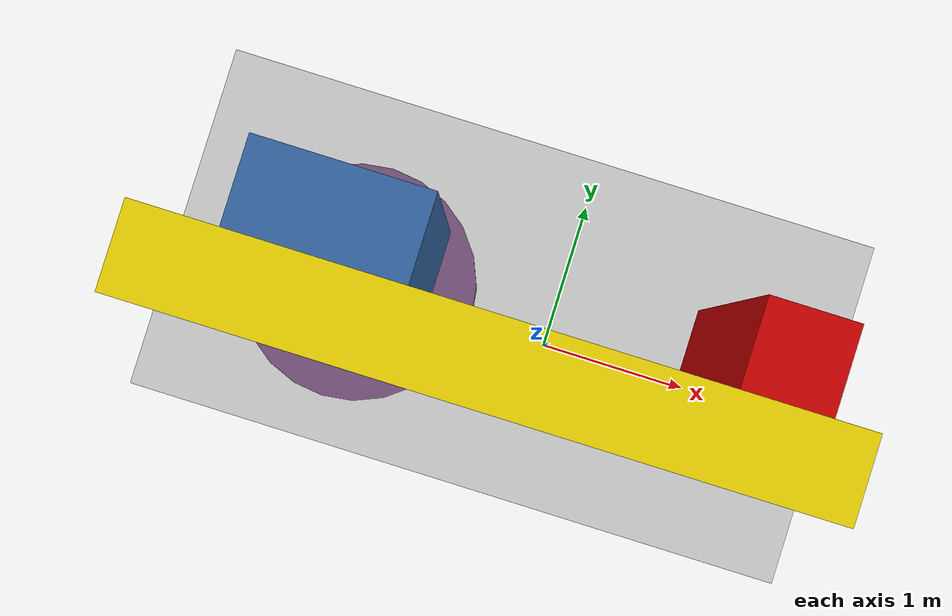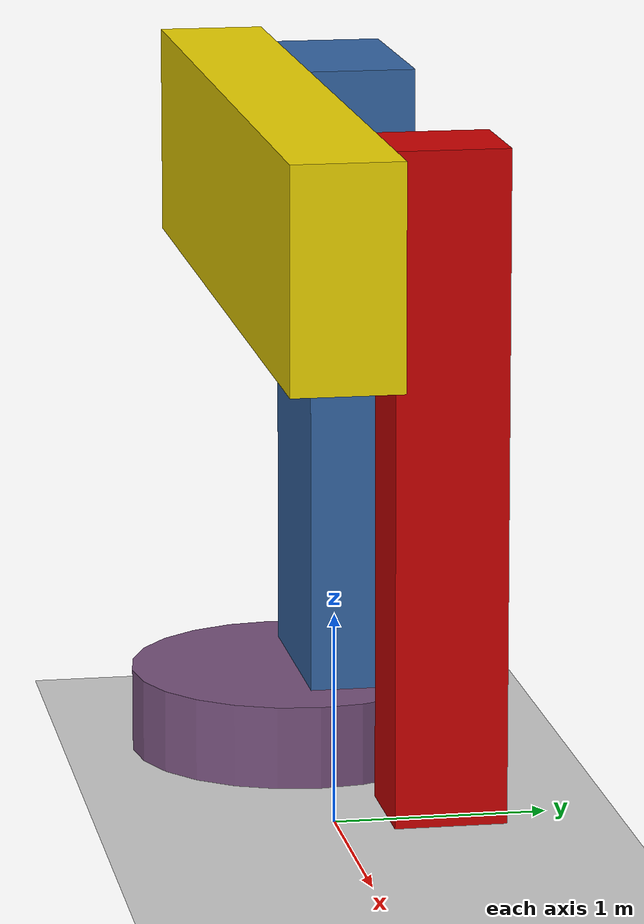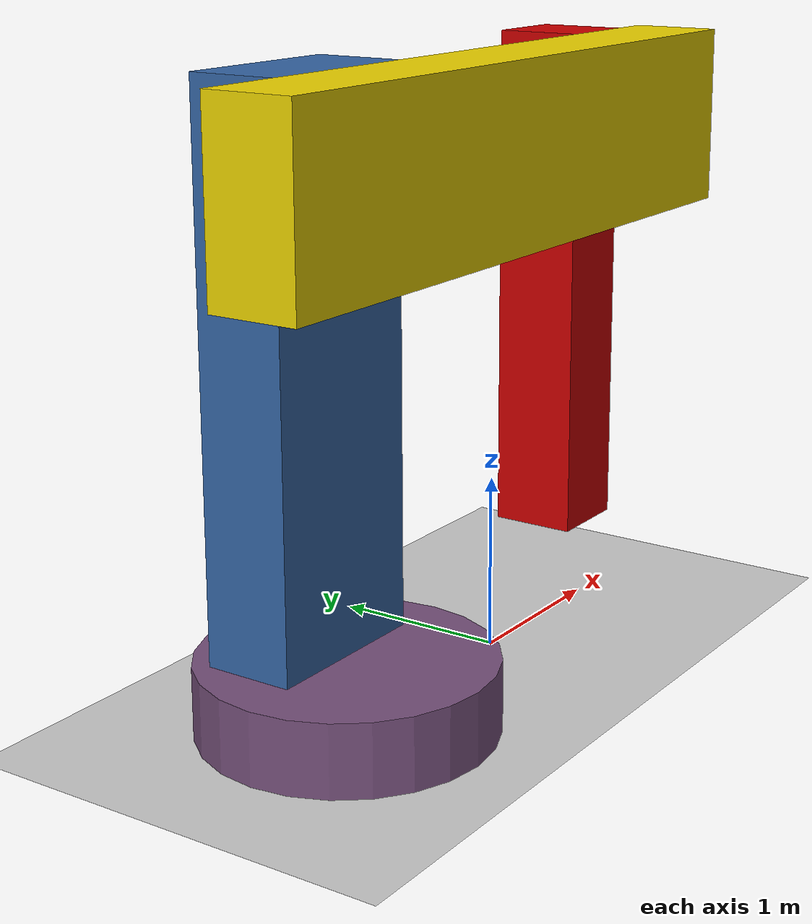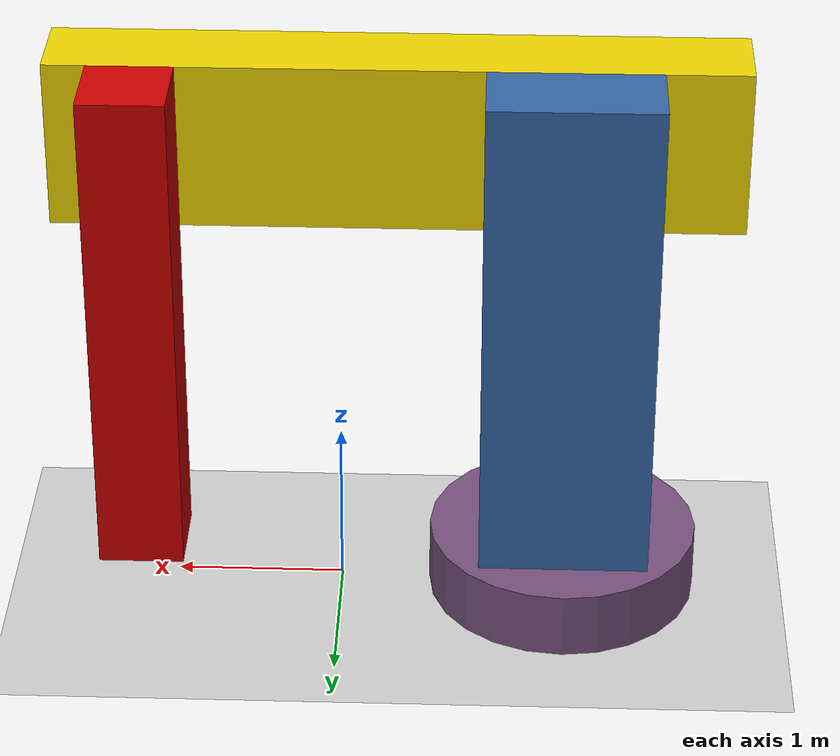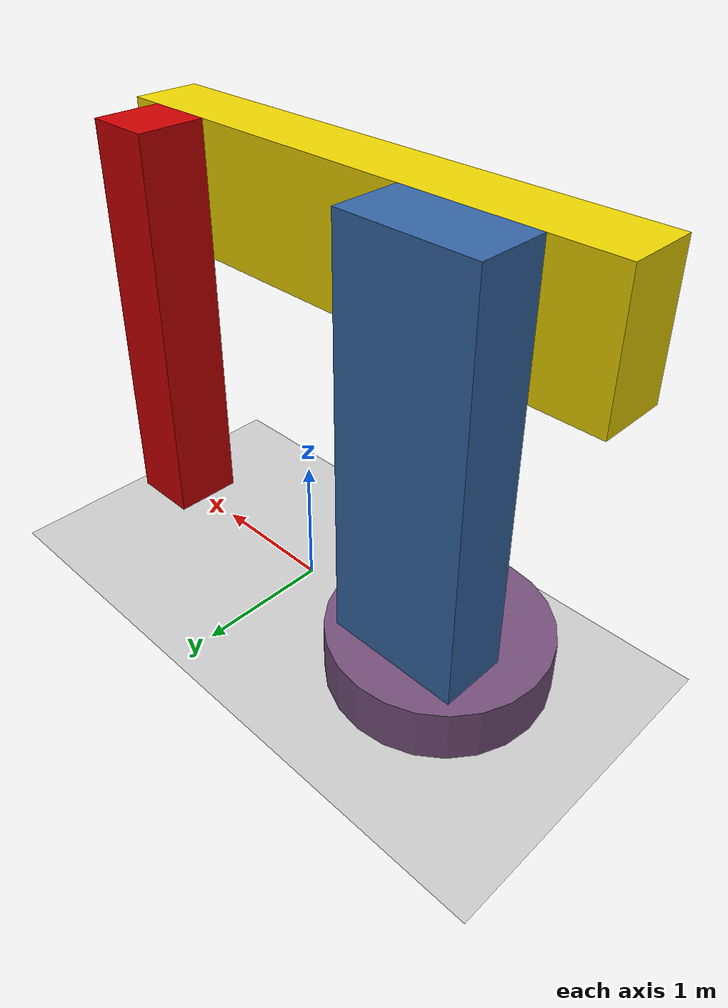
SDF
<sdf version='1.7'>
  <world name='default'>

    <include>
      <uri>model://sun</uri>
    </include>

    <include>
      <uri>model://ground_plane</uri>
    </include>

  <model name="robot01">
    <include>
      <uri>model://rrrbot</uri>
      <pose>0.0 0.0 0.4 0.0 0.0 0.0</pose>
    </include>

    <joint name="pin" type="fixed">
      <parent>world</parent>
      <child>rrrbot::link_0</child>
    </joint>
  </model>

  </world>
</sdf>

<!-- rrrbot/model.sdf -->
<sdf version='1.7'>
  <model name='rrrbot'>
    <link name='link_0'>
      <inertial>
        <mass>0.432315</mass>
        <inertia>
          <ixx>0.0366401</ixx>
          <ixy>0</ixy>
          <ixz>0</ixz>
          <iyy>0.0366401</iyy>
          <iyz>0</iyz>
          <izz>0.0302215</izz>
        </inertia>
        <pose>0 0 0 0 -0 0</pose>
      </inertial>
      <pose>-1.33379 0.026838 -0.2 0 -0 0</pose>
      <gravity>1</gravity>
      <self_collide>0</self_collide>
      <kinematic>0</kinematic>
      <enable_wind>0</enable_wind>
      <visual name='visual'>
        <pose>0 0 0 0 -0 0</pose>
        <geometry>
          <cylinder>
            <radius>0.8</radius>
            <length>0.4</length>
          </cylinder>
        </geometry>
        <material>
          <lighting>1</lighting>
          <script>
            <uri>file://media/materials/scripts/gazebo.material</uri>
            <name>Gazebo/Grey</name>
          </script>
          <shader type='pixel'>
            <normal_map>__default__</normal_map>
          </shader>
          <ambient>0.459 0.314 0.482 1</ambient>
          <diffuse>0.7 0.7 0.7 1</diffuse>
          <specular>0.01 0.01 0.01 1</specular>
          <emissive>0 0 0 1</emissive>
        </material>
        <transparency>0</transparency>
        <cast_shadows>1</cast_shadows>
      </visual>
      <collision name='collision'>
        <laser_retro>0</laser_retro>
        <max_contacts>10</max_contacts>
        <pose>0 0 0 0 -0 0</pose>
        <geometry>
          <cylinder>
            <radius>0.8</radius>
            <length>0.4</length>
          </cylinder>
        </geometry>
        <surface>
          <friction>
            <ode>
              <mu>1</mu>
              <mu2>1</mu2>
              <fdir1>0 0 0</fdir1>
              <slip1>0</slip1>
              <slip2>0</slip2>
            </ode>
            <torsional>
              <coefficient>1</coefficient>
              <patch_radius>0</patch_radius>
              <surface_radius>0</surface_radius>
              <use_patch_radius>1</use_patch_radius>
              <ode>
                <slip>0</slip>
              </ode>
            </torsional>
          </friction>
          <bounce>
            <restitution_coefficient>0</restitution_coefficient>
            <threshold>1e+06</threshold>
          </bounce>
          <contact>
            <collide_without_contact>0</collide_without_contact>
            <collide_without_contact_bitmask>1</collide_without_contact_bitmask>
            <collide_bitmask>1</collide_bitmask>
            <ode>
              <soft_cfm>0</soft_cfm>
              <soft_erp>0.2</soft_erp>
              <kp>1e+13</kp>
              <kd>1</kd>
              <max_vel>0.01</max_vel>
              <min_depth>0</min_depth>
            </ode>
            <bullet>
              <split_impulse>1</split_impulse>
              <split_impulse_penetration_threshold>-0.01</split_impulse_penetration_threshold>
              <soft_cfm>0</soft_cfm>
              <soft_erp>0.2</soft_erp>
              <kp>1e+13</kp>
              <kd>1</kd>
            </bullet>
          </contact>
        </surface>
      </collision>
    </link>
    <link name='link_1'>
      <inertial>
        <mass>1</mass>
        <inertia>
          <ixx>0.166667</ixx>
          <ixy>0</ixy>
          <ixz>0</ixz>
          <iyy>0.166667</iyy>
          <iyz>0</iyz>
          <izz>0.166667</izz>
        </inertia>
        <pose>0 0 0 0 -0 0</pose>
      </inertial>
      <pose>-1.33379 0.026838 0 0 -0 0</pose>
      <gravity>1</gravity>
      <self_collide>0</self_collide>
      <kinematic>0</kinematic>
      <enable_wind>0</enable_wind>
      <visual name='visual'>
        <pose>0 0.25 1.5 0 -0 0</pose>
        <geometry>
          <box>
            <size>1 0.5 3</size>
          </box>
        </geometry>
        <material>
          <lighting>1</lighting>
          <script>
            <uri>file://media/materials/scripts/gazebo.material</uri>
            <name>Gazebo/Grey</name>
          </script>
          <shader type='pixel'>
            <normal_map>__default__</normal_map>
          </shader>
          <ambient>0.204 0.396 0.643 1</ambient>
          <diffuse>0.7 0.7 0.7 1</diffuse>
          <specular>0.01 0.01 0.01 1</specular>
          <emissive>0 0 0 1</emissive>
        </material>
        <transparency>0</transparency>
        <cast_shadows>1</cast_shadows>
      </visual>
      <collision name='collision'>
        <laser_retro>0</laser_retro>
        <max_contacts>10</max_contacts>
        <pose>0 0.25 1.5 0 -0 0</pose>
        <geometry>
          <box>
            <size>1 0.5 3</size>
          </box>
        </geometry>
        <surface>
          <friction>
            <ode>
              <mu>1</mu>
              <mu2>1</mu2>
              <fdir1>0 0 0</fdir1>
              <slip1>0</slip1>
              <slip2>0</slip2>
            </ode>
            <torsional>
              <coefficient>1</coefficient>
              <patch_radius>0</patch_radius>
              <surface_radius>0</surface_radius>
              <use_patch_radius>1</use_patch_radius>
              <ode>
                <slip>0</slip>
              </ode>
            </torsional>
          </friction>
          <bounce>
            <restitution_coefficient>0</restitution_coefficient>
            <threshold>1e+06</threshold>
          </bounce>
          <contact>
            <collide_without_contact>0</collide_without_contact>
            <collide_without_contact_bitmask>1</collide_without_contact_bitmask>
            <collide_bitmask>1</collide_bitmask>
            <ode>
              <soft_cfm>0</soft_cfm>
              <soft_erp>0.2</soft_erp>
              <kp>1e+13</kp>
              <kd>1</kd>
              <max_vel>0.01</max_vel>
              <min_depth>0</min_depth>
            </ode>
            <bullet>
              <split_impulse>1</split_impulse>
              <split_impulse_penetration_threshold>-0.01</split_impulse_penetration_threshold>
              <soft_cfm>0</soft_cfm>
              <soft_erp>0.2</soft_erp>
              <kp>1e+13</kp>
              <kd>1</kd>
            </bullet>
          </contact>
        </surface>
      </collision>
    </link>
    <link name='link_5'>
      <inertial>
        <mass>1</mass>
        <inertia>
          <ixx>0.166667</ixx>
          <ixy>0</ixy>
          <ixz>0</ixz>
          <iyy>0.166667</iyy>
          <iyz>0</iyz>
          <izz>0.166667</izz>
        </inertia>
        <pose>0 0 0 0 -0 0</pose>
      </inertial>
      <pose>-1.33379 0.026838 2.5 0 -0 0</pose>
      <gravity>1</gravity>
      <self_collide>0</self_collide>
      <kinematic>0</kinematic>
      <enable_wind>0</enable_wind>
      <visual name='visual'>
        <pose>1 -0.25 0 0 -0 0</pose>
        <geometry>
          <box>
            <size>4 0.5 1</size>
          </box>
        </geometry>
        <material>
          <lighting>1</lighting>
          <script>
            <uri>file://media/materials/scripts/gazebo.material</uri>
            <name>Gazebo/Grey</name>
          </script>
          <shader type='pixel'>
            <normal_map>__default__</normal_map>
          </shader>
          <ambient>0.929 0.831 0 1</ambient>
          <diffuse>0.7 0.7 0.7 1</diffuse>
          <specular>0.01 0.01 0.01 1</specular>
          <emissive>0 0 0 1</emissive>
        </material>
        <transparency>0</transparency>
        <cast_shadows>1</cast_shadows>
      </visual>
      <collision name='collision'>
        <laser_retro>0</laser_retro>
        <max_contacts>10</max_contacts>
        <pose>1 -0.25 0 0 -0 0</pose>
        <geometry>
          <box>
            <size>4 0.5 1</size>
          </box>
        </geometry>
        <surface>
          <friction>
            <ode>
              <mu>1</mu>
              <mu2>1</mu2>
              <fdir1>0 0 0</fdir1>
              <slip1>0</slip1>
              <slip2>0</slip2>
            </ode>
            <torsional>
              <coefficient>1</coefficient>
              <patch_radius>0</patch_radius>
              <surface_radius>0</surface_radius>
              <use_patch_radius>1</use_patch_radius>
              <ode>
                <slip>0</slip>
              </ode>
            </torsional>
          </friction>
          <bounce>
            <restitution_coefficient>0</restitution_coefficient>
            <threshold>1e+06</threshold>
          </bounce>
          <contact>
            <collide_without_contact>0</collide_without_contact>
            <collide_without_contact_bitmask>1</collide_without_contact_bitmask>
            <collide_bitmask>1</collide_bitmask>
            <ode>
              <soft_cfm>0</soft_cfm>
              <soft_erp>0.2</soft_erp>
              <kp>1e+13</kp>
              <kd>1</kd>
              <max_vel>0.01</max_vel>
              <min_depth>0</min_depth>
            </ode>
            <bullet>
              <split_impulse>1</split_impulse>
              <split_impulse_penetration_threshold>-0.01</split_impulse_penetration_threshold>
              <soft_cfm>0</soft_cfm>
              <soft_erp>0.2</soft_erp>
              <kp>1e+13</kp>
              <kd>1</kd>
            </bullet>
          </contact>
        </surface>
      </collision>
    </link>
    <link name='link_6'>
      <inertial>
        <mass>1</mass>
        <inertia>
          <ixx>0.166667</ixx>
          <ixy>0</ixy>
          <ixz>0</ixz>
          <iyy>0.166667</iyy>
          <iyz>0</iyz>
          <izz>0.166667</izz>
        </inertia>
        <pose>0 0 0 0 -0 0</pose>
      </inertial>
      <pose>1.16621 0.026838 2.5 -3.14155 1.57079 -3.14155</pose>
      <gravity>1</gravity>
      <self_collide>0</self_collide>
      <kinematic>0</kinematic>
      <enable_wind>0</enable_wind>
      <visual name='visual'>
        <pose>1 0.25 0 0 -0 0</pose>
        <geometry>
          <box>
            <size>3 0.5 0.5</size>
          </box>
        </geometry>
        <material>
          <lighting>1</lighting>
          <script>
            <uri>file://media/materials/scripts/gazebo.material</uri>
            <name>Gazebo/Grey</name>
          </script>
          <shader type='pixel'>
            <normal_map>__default__</normal_map>
          </shader>
          <ambient>0.8 0 0 1</ambient>
          <diffuse>0.7 0.7 0.7 1</diffuse>
          <specular>0.01 0.01 0.01 1</specular>
          <emissive>0 0 0 1</emissive>
        </material>
        <transparency>0</transparency>
        <cast_shadows>1</cast_shadows>
      </visual>
      <collision name='collision'>
        <laser_retro>0</laser_retro>
        <max_contacts>10</max_contacts>
        <pose>1 0.25 0 0 -0 0</pose>
        <geometry>
          <box>
            <size>3 0.5 0.5</size>
          </box>
        </geometry>
        <surface>
          <friction>
            <ode>
              <mu>1</mu>
              <mu2>1</mu2>
              <fdir1>0 0 0</fdir1>
              <slip1>0</slip1>
              <slip2>0</slip2>
            </ode>
            <torsional>
              <coefficient>1</coefficient>
              <patch_radius>0</patch_radius>
              <surface_radius>0</surface_radius>
              <use_patch_radius>1</use_patch_radius>
              <ode>
                <slip>0</slip>
              </ode>
            </torsional>
          </friction>
          <bounce>
            <restitution_coefficient>0</restitution_coefficient>
            <threshold>1e+06</threshold>
          </bounce>
          <contact>
            <collide_without_contact>0</collide_without_contact>
            <collide_without_contact_bitmask>1</collide_without_contact_bitmask>
            <collide_bitmask>1</collide_bitmask>
            <ode>
              <soft_cfm>0</soft_cfm>
              <soft_erp>0.2</soft_erp>
              <kp>1e+13</kp>
              <kd>1</kd>
              <max_vel>0.01</max_vel>
              <min_depth>0</min_depth>
            </ode>
            <bullet>
              <split_impulse>1</split_impulse>
              <split_impulse_penetration_threshold>-0.01</split_impulse_penetration_threshold>
              <soft_cfm>0</soft_cfm>
              <soft_erp>0.2</soft_erp>
              <kp>1e+13</kp>
              <kd>1</kd>
            </bullet>
          </contact>
        </surface>
      </collision>
    </link>
    <joint name='link_0_JOINT_0' type='revolute'>
      <parent>link_0</parent>
      <child>link_1</child>
      <pose>0 0 0 0 -0 0</pose>
      <axis>
        <xyz>0 0 1</xyz>
        <limit>
          <lower>-1.79769e+308</lower>
          <upper>1.79769e+308</upper>
          <effort>-1</effort>
          <velocity>-1</velocity>
        </limit>
        <dynamics>
          <spring_reference>0</spring_reference>
          <spring_stiffness>0</spring_stiffness>
          <damping>0</damping>
          <friction>0</friction>
        </dynamics>
      </axis>
      <physics>
        <ode>
          <limit>
            <cfm>0</cfm>
            <erp>0.2</erp>
          </limit>
          <suspension>
            <cfm>0</cfm>
            <erp>0.2</erp>
          </suspension>
        </ode>
      </physics>
    </joint>
    <joint name='link_1_JOINT_2' type='revolute'>
      <parent>link_1</parent>
      <child>link_5</child>
      <pose>0 0 0 0 -0 0</pose>
      <axis>
        <xyz>0 1 0</xyz>
        <limit>
          <lower>-1.79769e+308</lower>
          <upper>1.79769e+308</upper>
          <effort>-1</effort>
          <velocity>-1</velocity>
        </limit>
        <dynamics>
          <spring_reference>0</spring_reference>
          <spring_stiffness>0</spring_stiffness>
          <damping>0</damping>
          <friction>0</friction>
        </dynamics>
      </axis>
      <physics>
        <ode>
          <limit>
            <cfm>0</cfm>
            <erp>0.2</erp>
          </limit>
          <suspension>
            <cfm>0</cfm>
            <erp>0.2</erp>
          </suspension>
        </ode>
      </physics>
    </joint>
    <joint name='link_5_JOINT_3' type='revolute'>
      <parent>link_5</parent>
      <child>link_6</child>
      <pose>0 0 0 0 -0 0</pose>
      <axis>
        <xyz>0 1 0</xyz>
        <limit>
          <lower>-1.79769e+308</lower>
          <upper>1.79769e+308</upper>
          <effort>-1</effort>
          <velocity>-1</velocity>
        </limit>
        <dynamics>
          <spring_reference>0</spring_reference>
          <spring_stiffness>0</spring_stiffness>
          <damping>0</damping>
          <friction>0</friction>
        </dynamics>
      </axis>
      <physics>
        <ode>
          <limit>
            <cfm>0</cfm>
            <erp>0.2</erp>
          </limit>
          <suspension>
            <cfm>0</cfm>
            <erp>0.2</erp>
          </suspension>
        </ode>
      </physics>
    </joint>
    <static>0</static>
    <allow_auto_disable>1</allow_auto_disable>
  </model>
</sdf>
